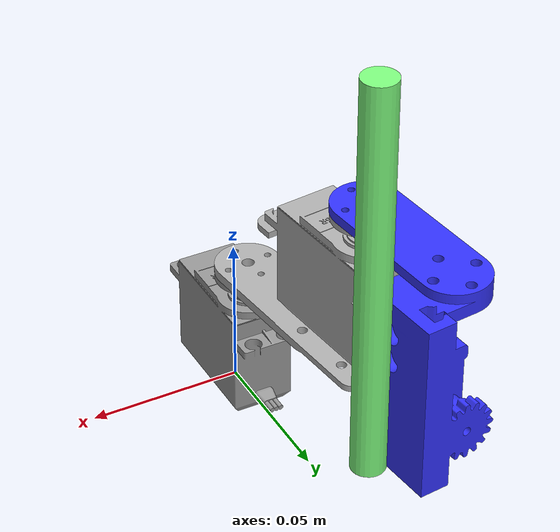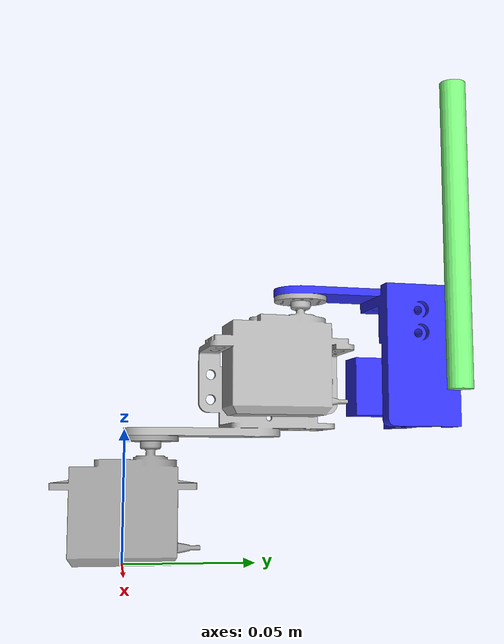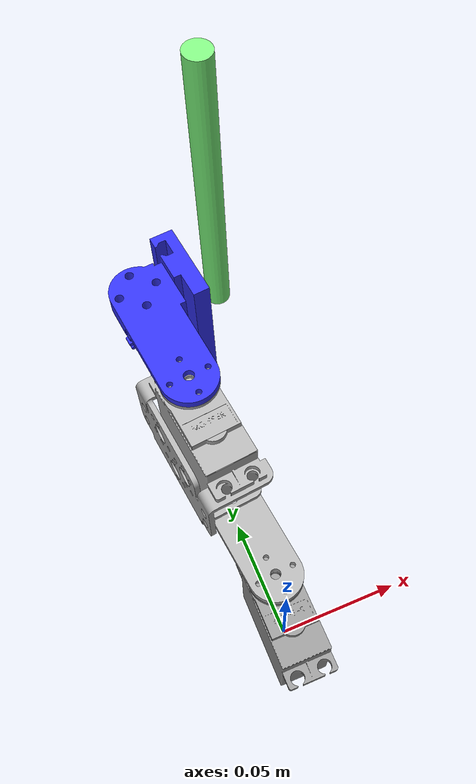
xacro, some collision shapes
<?xml version="1.0"?>
<robot xmlns:xacro="http://www.ros.org/wiki/xacro" name="scara">

  <xacro:arg name="is_ignition" default="true"/>

  <xacro:include filename="$(find scara_description)/urdf/scara_gazebo.xacro"/>
  <xacro:include filename="$(find scara_description)/urdf/scara_ros2_control.xacro"/>

  <!-- variables -->
  <xacro:property name="PI" value="3.14159265359"/>
  <xacro:property name="effort" value="30.0"/>
  <xacro:property name="velocity" value="10.0"/>

  <link name="world"/>

  <link name="base_link"/>

  <link name="servomg996r">
    <visual>
      <origin xyz="0 0 0" rpy="0 0 0"/>
      <geometry>
        <mesh filename="package://scara_description/meshes/servomg996r.stl"/>
      </geometry>
      <material name="grey_servo">
        <color rgba="0.6 0.6 0.6 1.0"/>
      </material>
    </visual>
    <collision>
      <origin xyz="0 0 0" rpy="0 0 0"/>
      <geometry>
        <mesh filename="package://scara_description/meshes/servomg996r.stl"/>
      </geometry>
    </collision>
    <inertial>
      <origin xyz="0 0 0"/>
      <mass value="0.1"/>
      <inertia ixx="1e-5" ixy="0" ixz="0" iyy="1e-5" iyz="0" izz="1e-5"/>
    </inertial>
  </link>

  <link name="first_link">
    <visual>
      <origin xyz="0 0.01 0.0475" rpy="3.14159 0 0"/>
      <geometry>
        <mesh filename="package://scara_description/meshes/first_link.stl"/>
      </geometry>
      <material name="light_grey">
        <color rgba="0.7 0.7 0.7 1.0"/>
      </material>
    </visual>
    <collision>
      <origin xyz="0 0.01 0.047" rpy="3.14159 0 0"/>
      <geometry>
        <mesh filename="package://scara_description/meshes/first_link.stl"/>
      </geometry>
    </collision>
    <inertial>
      <origin xyz="0 0 0"/>
      <mass value="0.1"/>
      <inertia ixx="1e-5" ixy="0" ixz="0" iyy="1e-5" iyz="0" izz="1e-5"/>
    </inertial>
  </link>

  <link name="second_link">
    <visual>
      <origin xyz="0.0005 0.07 0.1035" rpy="3.14159 0 0"/>
      <geometry>
        <mesh filename="package://scara_description/meshes/second_link.stl"/>
      </geometry>
      <material name="blue_link">
        <color rgba="0.2 0.2 1.0 1.0"/>
      </material>
    </visual>
    <collision>
      <origin xyz="0.0005 0.07 0.1025" rpy="3.14159 0 0"/>
      <geometry>
        <mesh filename="package://scara_description/meshes/second_link.stl"/>
      </geometry>
    </collision>
    <inertial>
      <origin xyz="0 0 0"/>
      <mass value="0.1"/>
      <inertia ixx="1e-5" ixy="0" ixz="0" iyy="1e-5" iyz="0" izz="1e-5"/>
    </inertial>
  </link>

  <link name="actuator">
    <visual>
      <origin xyz="-0.1216 0.0178 -0.0916" rpy="0 0 -1.5708"/>
      <geometry>
        <mesh filename="package://scara_description/meshes/actuator.stl"/>
      </geometry>
      <material name="green_actuator">
        <color rgba="0.5 1.0 0.5 1.0"/>
      </material>
    </visual>
    <collision>
      <origin xyz="0.0 -0.0178 0.04" rpy="0 0 -1.5708"/>
      <geometry>
        <cylinder radius="0.005" length="0.12"/>
      </geometry>
    </collision>
    <inertial>
      <origin xyz="0 0 0"/>
      <mass value="0.1"/>
      <inertia ixx="1e-5" ixy="0" ixz="0" iyy="1e-5" iyz="0" izz="1e-5"/>
    </inertial>
  </link>

  <!-- Joints -->
  <joint name="robot_in_world" type="fixed">
    <origin xyz="0 0 0.0" rpy="0 0 0"/>
    <parent link="world"/>
    <child link="base_link"/>
  </joint>

  <joint name="base_to_servo" type="fixed">
    <origin xyz="0 0 0" rpy="0 0 0"/>
    <parent link="base_link"/>
    <child link="servomg996r"/>
  </joint>

  <joint name="joint1" type="revolute">
    <origin xyz="0 0.01 0.0475" rpy="3.14159 0 0.109"/>
    <parent link="servomg996r"/>
    <child link="first_link"/>
    <axis xyz="0 0 1"/>
    <limit lower="-3.14" upper="3.14" effort="1" velocity="20"/>
  </joint>

  <joint name="joint2" type="revolute">
    <origin xyz="-0.0005 -0.0598 -0.056" rpy="0 0 0"/>
    <parent link="first_link"/>
    <child link="second_link"/>
    <axis xyz="0 0 1"/>
    <limit lower="-3.14" upper="3.14" effort="1" velocity="20"/>
  </joint>

  <joint name="slider_actuator" type="prismatic">
    <origin xyz="0.0183 -0.0518 0.0186" rpy="3.14159 0 -1.5708"/>
    <parent link="second_link"/>
    <child link="actuator"/>
    <axis xyz="0 0 1"/>
    <limit lower="-0.1" upper="0.1" effort="1" velocity="0.2"/>
  </joint>

</robot>
